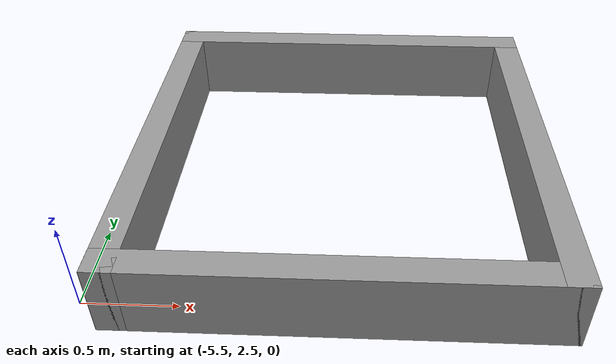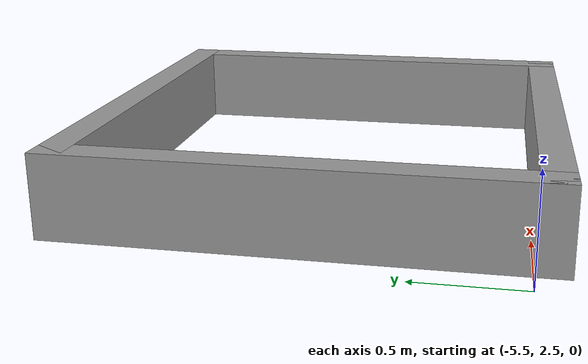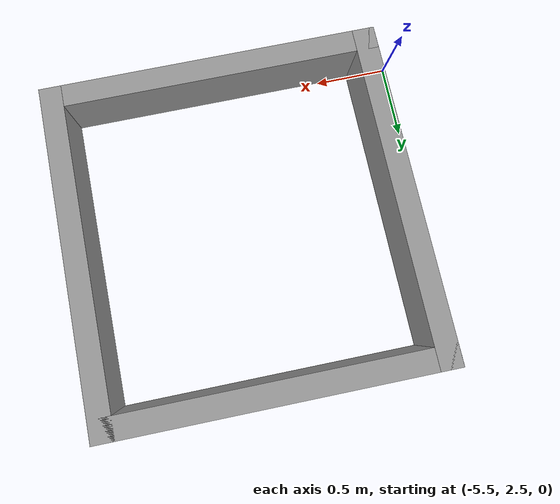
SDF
<?xml version='1.0'?>
<sdf version='1.6'>
  <model name='campus'>
    <pose frame=''>-4.22025 3.493 0 0 -0 0</pose>
    <link name='Wall_13'>
      <collision name='Wall_13_Collision'>
        <geometry>
          <box>
            <size>2.3 0.15 0.4</size>
          </box>
        </geometry>
        <pose frame=''>0 0 0.2 0 -0 0</pose>
      </collision>
      <visual name='Wall_13_Visual'>
        <pose frame=''>0 0 0.2 0 -0 0</pose>
        <geometry>
          <box>
            <size>2.3 0.15 0.4</size>
          </box>
        </geometry>
        <material>
          <script>
            <uri>file://media/materials/scripts/gazebo.material</uri>
            <name>Gazebo/Grey</name>
          </script>
          <ambient>1 1 1 1</ambient>
        </material>
        <meta>
          <layer>0</layer>
        </meta>
      </visual>
      <pose frame=''>-1.07525 0 0 0 -0 -1.5708</pose>
    </link>
    <link name='Wall_15'>
      <collision name='Wall_15_Collision'>
        <geometry>
          <box>
            <size>2.3 0.15 0.4</size>
          </box>
        </geometry>
        <pose frame=''>0 0 0.2 0 -0 0</pose>
      </collision>
      <visual name='Wall_15_Visual'>
        <pose frame=''>0 0 0.2 0 -0 0</pose>
        <geometry>
          <box>
            <size>2.3 0.15 0.4</size>
          </box>
        </geometry>
        <material>
          <script>
            <uri>file://media/materials/scripts/gazebo.material</uri>
            <name>Gazebo/Grey</name>
          </script>
          <ambient>1 1 1 1</ambient>
        </material>
        <meta>
          <layer>0</layer>
        </meta>
      </visual>
      <pose frame=''>-0 -1.075 0 0 -0 0</pose>
    </link>
    <link name='Wall_17'>
      <collision name='Wall_17_Collision'>
        <geometry>
          <box>
            <size>2.3 0.15 0.4</size>
          </box>
        </geometry>
        <pose frame=''>0 0 0.2 0 -0 0</pose>
      </collision>
      <visual name='Wall_17_Visual'>
        <pose frame=''>0 0 0.2 0 -0 0</pose>
        <geometry>
          <box>
            <size>2.3 0.15 0.4</size>
          </box>
        </geometry>
        <material>
          <script>
            <uri>file://media/materials/scripts/gazebo.material</uri>
            <name>Gazebo/Grey</name>
          </script>
          <ambient>1 1 1 1</ambient>
        </material>
        <meta>
          <layer>0</layer>
        </meta>
      </visual>
      <pose frame=''>1.07525 0 0 0 -0 -1.5708</pose>
    </link>
    <link name='Wall_4'>
      <collision name='Wall_4_Collision'>
        <geometry>
          <box>
            <size>2.3 0.15 0.4</size>
          </box>
        </geometry>
        <pose frame=''>0 0 0.2 0 -0 0</pose>
      </collision>
      <visual name='Wall_4_Visual'>
        <pose frame=''>0 0 0.2 0 -0 0</pose>
        <geometry>
          <box>
            <size>2.3 0.15 0.4</size>
          </box>
        </geometry>
        <material>
          <script>
            <uri>file://media/materials/scripts/gazebo.material</uri>
            <name>Gazebo/Grey</name>
          </script>
          <ambient>1 1 1 1</ambient>
        </material>
        <meta>
          <layer>0</layer>
        </meta>
      </visual>
      <pose frame=''>-0 1.075 0 0 -0 3.14159</pose>
    </link>
    <static>1</static>
  </model>
</sdf>
